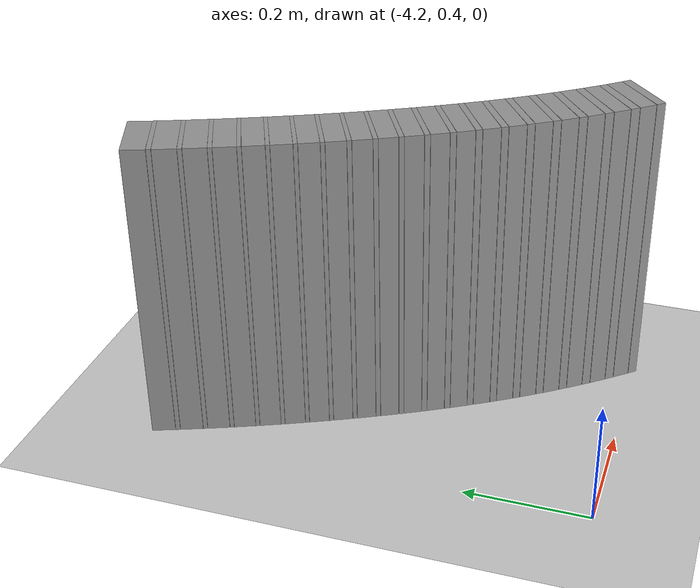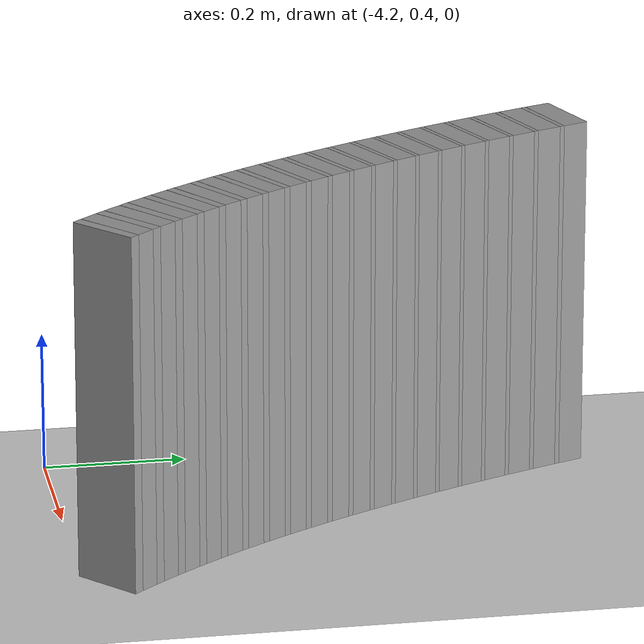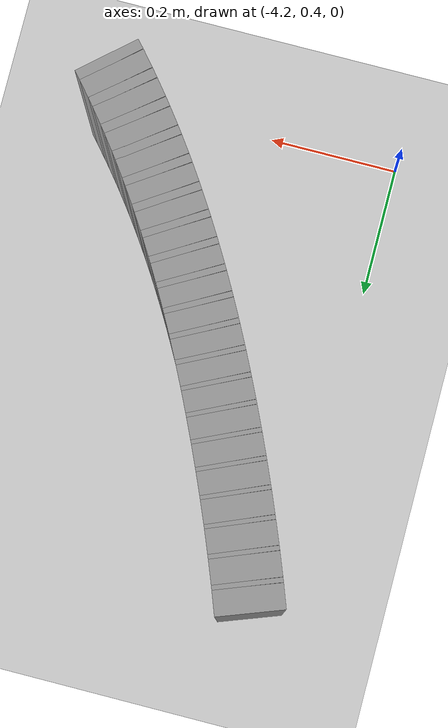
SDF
<sdf version="1.6">
 <world name="default">
  <include><uri>model://ground_plane</uri></include>
  <include><uri>model://sun</uri></include>
  <model name="wall_655_inward">
   <static>true</static>
   <link name="link">
    <collision name="collision">
     <geometry><box><size>0.037300464583130195 0.1 0.5</size></box></geometry>
    </collision>
    <visual name="visual">
     <geometry><box><size>0.037300464583130195 0.1 0.5</size></box></geometry>
     <material>
      <script><uri>file://media/materials/scripts/gazebo.material</uri><name>Gazebo/Gray</name></script>
     </material>
    </visual>
   </link>
   <pose>-4.1477777449177795 1.1191323334147976 0.25 0 0 -1.2159176346132847</pose>
  </model>
  <model name="wall_656_inward">
   <static>true</static>
   <link name="link">
    <collision name="collision">
     <geometry><box><size>0.007293192451600948 0.1 0.5</size></box></geometry>
    </collision>
    <visual name="visual">
     <geometry><box><size>0.007293192451600948 0.1 0.5</size></box></geometry>
     <material>
      <script><uri>file://media/materials/scripts/gazebo.material</uri><name>Gazebo/Gray</name></script>
     </material>
    </visual>
   </link>
   <pose>-4.140005213896336 1.0982341826373734 0.25 0 0 -1.208624377505226</pose>
  </model>
  <model name="wall_657_inward">
   <static>true</static>
   <link name="link">
    <collision name="collision">
     <geometry><box><size>0.03643741315569131 0.1 0.5</size></box></geometry>
    </collision>
    <visual name="visual">
     <geometry><box><size>0.03643741315569131 0.1 0.5</size></box></geometry>
     <material>
      <script><uri>file://media/materials/scripts/gazebo.material</uri><name>Gazebo/Gray</name></script>
     </material>
    </visual>
   </link>
   <pose>-4.132134121920912 1.0778348237265163 0.25 0 0 -1.2013311203970898</pose>
  </model>
  <model name="wall_658_inward">
   <static>true</static>
   <link name="link">
    <collision name="collision">
     <geometry><box><size>0.006912254716383923 0.1 0.5</size></box></geometry>
    </collision>
    <visual name="visual">
     <geometry><box><size>0.006912254716383923 0.1 0.5</size></box></geometry>
     <material>
      <script><uri>file://media/materials/scripts/gazebo.material</uri><name>Gazebo/Gray</name></script>
     </material>
    </visual>
   </link>
   <pose>-4.124284727976988 1.0576312984807923 0.25 0 0 -1.1944188106356992</pose>
  </model>
  <model name="wall_659_inward">
   <static>true</static>
   <link name="link">
    <collision name="collision">
     <geometry><box><size>0.0355606212988983 0.1 0.5</size></box></geometry>
    </collision>
    <visual name="visual">
     <geometry><box><size>0.0355606212988983 0.1 0.5</size></box></geometry>
     <material>
      <script><uri>file://media/materials/scripts/gazebo.material</uri><name>Gazebo/Gray</name></script>
     </material>
    </visual>
   </link>
   <pose>-4.116365047831776 1.0379269327328078 0.25 0 0 -1.187506500874483</pose>
  </model>
  <model name="wall_660_inward">
   <static>true</static>
   <link name="link">
    <collision name="collision">
     <geometry><box><size>0.00661236097015432 0.1 0.5</size></box></geometry>
    </collision>
    <visual name="visual">
     <geometry><box><size>0.00661236097015432 0.1 0.5</size></box></geometry>
     <material>
      <script><uri>file://media/materials/scripts/gazebo.material</uri><name>Gazebo/Gray</name></script>
     </material>
    </visual>
   </link>
   <pose>-4.10845900846369 1.0183787338496089 0.25 0 0 -1.1808940917177069</pose>
  </model>
  <model name="wall_661_inward">
   <static>true</static>
   <link name="link">
    <collision name="collision">
     <geometry><box><size>0.03468120796233376 0.1 0.5</size></box></geometry>
    </collision>
    <visual name="visual">
     <geometry><box><size>0.03468120796233376 0.1 0.5</size></box></geometry>
     <material>
      <script><uri>file://media/materials/scripts/gazebo.material</uri><name>Gazebo/Gray</name></script>
     </material>
    </visual>
   </link>
   <pose>-4.100505294798078 0.9993255020768943 0.25 0 0 -1.1742816825608136</pose>
  </model>
  <model name="wall_662_inward">
   <static>true</static>
   <link name="link">
    <collision name="collision">
     <geometry><box><size>0.00642705891398938 0.1 0.5</size></box></geometry>
    </collision>
    <visual name="visual">
     <geometry><box><size>0.00642705891398938 0.1 0.5</size></box></geometry>
     <material>
      <script><uri>file://media/materials/scripts/gazebo.material</uri><name>Gazebo/Gray</name></script>
     </material>
    </visual>
   </link>
   <pose>-4.092548144650905 0.9803741469515511 0.25 0 0 -1.1678545793987132</pose>
  </model>
  <model name="wall_663_inward">
   <static>true</static>
   <link name="link">
    <collision name="collision">
     <geometry><box><size>0.03381122898415927 0.1 0.5</size></box></geometry>
    </collision>
    <visual name="visual">
     <geometry><box><size>0.03381122898415927 0.1 0.5</size></box></geometry>
     <material>
      <script><uri>file://media/materials/scripts/gazebo.material</uri><name>Gazebo/Gray</name></script>
     </material>
    </visual>
   </link>
   <pose>-4.084559086974141 0.9619092433075982 0.25 0 0 -1.1614274762368435</pose>
  </model>
  <model name="wall_664_inward">
   <static>true</static>
   <link name="link">
    <collision name="collision">
     <geometry><box><size>0.006362974956692393 0.1 0.5</size></box></geometry>
    </collision>
    <visual name="visual">
     <geometry><box><size>0.006362974956692393 0.1 0.5</size></box></geometry>
     <material>
      <script><uri>file://media/materials/scripts/gazebo.material</uri><name>Gazebo/Gray</name></script>
     </material>
    </visual>
   </link>
   <pose>-4.076545264178943 0.9434900106379713 0.25 0 0 -1.1550644583425171</pose>
  </model>
  <model name="wall_665_inward">
   <static>true</static>
   <link name="link">
    <collision name="collision">
     <geometry><box><size>0.03296511525022726 0.1 0.5</size></box></geometry>
    </collision>
    <visual name="visual">
     <geometry><box><size>0.03296511525022726 0.1 0.5</size></box></geometry>
     <material>
      <script><uri>file://media/materials/scripts/gazebo.material</uri><name>Gazebo/Gray</name></script>
     </material>
    </visual>
   </link>
   <pose>-4.068507941503441 0.9255435906357589 0.25 0 0 -1.1487014404483504</pose>
  </model>
  <model name="wall_666_inward">
   <static>true</static>
   <link name="link">
    <collision name="collision">
     <geometry><box><size>0.006426131891679253 0.1 0.5</size></box></geometry>
    </collision>
    <visual name="visual">
     <geometry><box><size>0.006426131891679253 0.1 0.5</size></box></geometry>
     <material>
      <script><uri>file://media/materials/scripts/gazebo.material</uri><name>Gazebo/Gray</name></script>
     </material>
    </visual>
   </link>
   <pose>-4.060420380403878 0.9075851175293531 0.25 0 0 -1.1422752643278566</pose>
  </model>
  <model name="wall_667_inward">
   <static>true</static>
   <link name="link">
    <collision name="collision">
     <geometry><box><size>0.032156178354778436 0.1 0.5</size></box></geometry>
    </collision>
    <visual name="visual">
     <geometry><box><size>0.032156178354778436 0.1 0.5</size></box></geometry>
     <material>
      <script><uri>file://media/materials/scripts/gazebo.material</uri><name>Gazebo/Gray</name></script>
     </material>
    </visual>
   </link>
   <pose>-4.052310563120322 0.8900814780139016 0.25 0 0 -1.1358490882072512</pose>
  </model>
  <model name="wall_668_inward">
   <static>true</static>
   <link name="link">
    <collision name="collision">
     <geometry><box><size>0.00662562842160259 0.1 0.5</size></box></geometry>
    </collision>
    <visual name="visual">
     <geometry><box><size>0.00662562842160259 0.1 0.5</size></box></geometry>
     <material>
      <script><uri>file://media/materials/scripts/gazebo.material</uri><name>Gazebo/Gray</name></script>
     </material>
    </visual>
   </link>
   <pose>-4.0441200873923 0.8725053321533448 0.25 0 0 -1.129223411308407</pose>
  </model>
  <model name="wall_669_inward">
   <static>true</static>
   <link name="link">
    <collision name="collision">
     <geometry><box><size>0.03139613469563077 0.1 0.5</size></box></geometry>
    </collision>
    <visual name="visual">
     <geometry><box><size>0.03139613469563077 0.1 0.5</size></box></geometry>
     <material>
      <script><uri>file://media/materials/scripts/gazebo.material</uri><name>Gazebo/Gray</name></script>
     </material>
    </visual>
   </link>
   <pose>-4.035901672584313 0.8553627246300072 0.25 0 0 -1.1225977344094153</pose>
  </model>
  <model name="wall_670_inward">
   <static>true</static>
   <link name="link">
    <collision name="collision">
     <geometry><box><size>0.0069474247398406365 0.1 0.5</size></box></geometry>
    </collision>
    <visual name="visual">
     <geometry><box><size>0.0069474247398406365 0.1 0.5</size></box></geometry>
     <material>
      <script><uri>file://media/materials/scripts/gazebo.material</uri><name>Gazebo/Gray</name></script>
     </material>
    </visual>
   </link>
   <pose>-4.027572007349639 0.8380950906698893 0.25 0 0 -1.1156502537801256</pose>
  </model>
  <model name="wall_671_inward">
   <static>true</static>
   <link name="link">
    <collision name="collision">
     <geometry><box><size>0.0306989106808327 0.1 0.5</size></box></geometry>
    </collision>
    <visual name="visual">
     <geometry><box><size>0.0306989106808327 0.1 0.5</size></box></geometry>
     <material>
      <script><uri>file://media/materials/scripts/gazebo.material</uri><name>Gazebo/Gray</name></script>
     </material>
    </visual>
   </link>
   <pose>-4.019201844647197 0.8212353918174871 0.25 0 0 -1.108702773150873</pose>
  </model>
  <model name="wall_672_inward">
   <static>true</static>
   <link name="link">
    <collision name="collision">
     <geometry><box><size>0.007388957110436156 0.1 0.5</size></box></geometry>
    </collision>
    <visual name="visual">
     <geometry><box><size>0.007388957110436156 0.1 0.5</size></box></geometry>
     <material>
      <script><uri>file://media/materials/scripts/gazebo.material</uri><name>Gazebo/Gray</name></script>
     </material>
    </visual>
   </link>
   <pose>-4.01068722927632 0.8042010251669958 0.25 0 0 -1.1013137488033562</pose>
  </model>
  <model name="wall_673_inward">
   <static>true</static>
   <link name="link">
    <collision name="collision">
     <geometry><box><size>0.030075622267343057 0.1 0.5</size></box></geometry>
    </collision>
    <visual name="visual">
     <geometry><box><size>0.030075622267343057 0.1 0.5</size></box></geometry>
     <material>
      <script><uri>file://media/materials/scripts/gazebo.material</uri><name>Gazebo/Gray</name></script>
     </material>
    </visual>
   </link>
   <pose>-4.0021133690560085 0.7875461590718105 0.25 0 0 -1.0939247244558366</pose>
  </model>
  <model name="wall_674_inward">
   <static>true</static>
   <link name="link">
    <collision name="collision">
     <geometry><box><size>0.007952051819569874 0.1 0.5</size></box></geometry>
    </collision>
    <visual name="visual">
     <geometry><box><size>0.007952051819569874 0.1 0.5</size></box></geometry>
     <material>
      <script><uri>file://media/materials/scripts/gazebo.material</uri><name>Gazebo/Gray</name></script>
     </material>
    </visual>
   </link>
   <pose>-3.9933579464674063 0.7706682210023641 0.25 0 0 -1.0859725888257379</pose>
  </model>
  <model name="wall_675_inward">
   <static>true</static>
   <link name="link">
    <collision name="collision">
     <geometry><box><size>0.029534103511804334 0.1 0.5</size></box></geometry>
    </collision>
    <visual name="visual">
     <geometry><box><size>0.029534103511804334 0.1 0.5</size></box></geometry>
     <material>
      <script><uri>file://media/materials/scripts/gazebo.material</uri><name>Gazebo/Gray</name></script>
     </material>
    </visual>
   </link>
   <pose>-3.984519011833304 0.7541402906401372 0.25 0 0 -1.0780204531955884</pose>
  </model>
  <model name="wall_676_inward">
   <static>true</static>
   <link name="link">
    <collision name="collision">
     <geometry><box><size>0.008596051838584666 0.1 0.5</size></box></geometry>
    </collision>
    <visual name="visual">
     <geometry><box><size>0.008596051838584666 0.1 0.5</size></box></geometry>
     <material>
      <script><uri>file://media/materials/scripts/gazebo.material</uri><name>Gazebo/Gray</name></script>
     </material>
    </visual>
   </link>
   <pose>-3.9754673571094568 0.7373611356088488 0.25 0 0 -1.0694242954900643</pose>
  </model>
  <model name="wall_677_inward">
   <static>true</static>
   <link name="link">
    <collision name="collision">
     <geometry><box><size>0.029082183010291262 0.1 0.5</size></box></geometry>
    </collision>
    <visual name="visual">
     <geometry><box><size>0.029082183010291262 0.1 0.5</size></box></geometry>
     <material>
      <script><uri>file://media/materials/scripts/gazebo.material</uri><name>Gazebo/Gray</name></script>
     </material>
    </visual>
   </link>
   <pose>-3.96630337422032 0.7209012101914594 0.25 0 0 -1.060828137784584</pose>
  </model>
  <model name="wall_678_inward">
   <static>true</static>
   <link name="link">
    <collision name="collision">
     <geometry><box><size>0.009345192958163556 0.1 0.5</size></box></geometry>
    </collision>
    <visual name="visual">
     <geometry><box><size>0.009345192958163556 0.1 0.5</size></box></geometry>
     <material>
      <script><uri>file://media/materials/scripts/gazebo.material</uri><name>Gazebo/Gray</name></script>
     </material>
    </visual>
   </link>
   <pose>-3.9568862117360037 0.7041537649300369 0.25 0 0 -1.0514828087977006</pose>
  </model>
  <model name="wall_679_inward">
   <static>true</static>
   <link name="link">
    <collision name="collision">
     <geometry><box><size>0.028723440009916702 0.1 0.5</size></box></geometry>
    </collision>
    <visual name="visual">
     <geometry><box><size>0.028723440009916702 0.1 0.5</size></box></geometry>
     <material>
      <script><uri>file://media/materials/scripts/gazebo.material</uri><name>Gazebo/Gray</name></script>
     </material>
    </visual>
   </link>
   <pose>-3.947323572543226 0.687696083593767 0.25 0 0 -1.0421374798108007</pose>
  </model>
  <model name="wall_680_inward">
   <static>true</static>
   <link name="link">
    <collision name="collision">
     <geometry><box><size>0.01015620518059686 0.1 0.5</size></box></geometry>
    </collision>
    <visual name="visual">
     <geometry><box><size>0.01015620518059686 0.1 0.5</size></box></geometry>
     <material>
      <script><uri>file://media/materials/scripts/gazebo.material</uri><name>Gazebo/Gray</name></script>
     </material>
    </visual>
   </link>
   <pose>-3.937474196361803 0.6709363410978978 0.25 0 0 -1.0319811000225383</pose>
  </model>
  <model name="wall_681_inward">
   <static>true</static>
   <link name="link">
    <collision name="collision">
     <geometry><box><size>0.028460268694327565 0.1 0.5</size></box></geometry>
    </collision>
    <visual name="visual">
     <geometry><box><size>0.028460268694327565 0.1 0.5</size></box></geometry>
     <material>
      <script><uri>file://media/materials/scripts/gazebo.material</uri><name>Gazebo/Gray</name></script>
     </material>
    </visual>
   </link>
   <pose>-3.9274430936368194 0.6544385370671748 0.25 0 0 -1.021824720234275</pose>
  </model>
  <model name="wall_682_inward">
   <static>true</static>
   <link name="link">
    <collision name="collision">
     <geometry><box><size>0.011008726579064387 0.1 0.5</size></box></geometry>
    </collision>
    <visual name="visual">
     <geometry><box><size>0.011008726579064387 0.1 0.5</size></box></geometry>
     <material>
      <script><uri>file://media/materials/scripts/gazebo.material</uri><name>Gazebo/Gray</name></script>
     </material>
    </visual>
   </link>
   <pose>-3.917093912947233 0.6376356991215065 0.25 0 0 -1.0108157712813979</pose>
  </model>
  <model name="wall_683_inward">
   <static>true</static>
   <link name="link">
    <collision name="collision">
     <geometry><box><size>0.02829365327712948 0.1 0.5</size></box></geometry>
    </collision>
    <visual name="visual">
     <geometry><box><size>0.02829365327712948 0.1 0.5</size></box></geometry>
     <material>
      <script><uri>file://media/materials/scripts/gazebo.material</uri><name>Gazebo/Gray</name></script>
     </material>
    </visual>
   </link>
   <pose>-3.906524299295603 0.621069374984216 0.25 0 0 -0.9998068223284678</pose>
  </model>
  <model name="wall_684_inward">
   <static>true</static>
   <link name="link">
    <collision name="collision">
     <geometry><box><size>0.011904463225547666 0.1 0.5</size></box></geometry>
    </collision>
    <visual name="visual">
     <geometry><box><size>0.011904463225547666 0.1 0.5</size></box></geometry>
     <material>
      <script><uri>file://media/materials/scripts/gazebo.material</uri><name>Gazebo/Gray</name></script>
     </material>
    </visual>
   </link>
   <pose>-3.8956020751084686 0.6041973499803603 0.25 0 0 -0.9879020779090274</pose>
  </model>
  <model name="wall_685_inward">
   <static>true</static>
   <link name="link">
    <collision name="collision">
     <geometry><box><size>0.02822162398803851 0.1 0.5</size></box></geometry>
    </collision>
    <visual name="visual">
     <geometry><box><size>0.02822162398803851 0.1 0.5</size></box></geometry>
     <material>
      <script><uri>file://media/materials/scripts/gazebo.material</uri><name>Gazebo/Gray</name></script>
     </material>
    </visual>
   </link>
   <pose>-3.8844188288847468 0.5875405549890608 0.25 0 0 -0.9759973334895551</pose>
  </model>
  <model name="wall_686_inward">
   <static>true</static>
   <link name="link">
    <collision name="collision">
     <geometry><box><size>0.01279972822663946 0.1 0.5</size></box></geometry>
    </collision>
    <visual name="visual">
     <geometry><box><size>0.01279972822663946 0.1 0.5</size></box></geometry>
     <material>
      <script><uri>file://media/materials/scripts/gazebo.material</uri><name>Gazebo/Gray</name></script>
     </material>
    </visual>
   </link>
   <pose>-3.8728582753768874 0.5705986943754888 0.25 0 0 -0.9631972557341004</pose>
  </model>
  <model name="wall_687_inward">
   <static>true</static>
   <link name="link">
    <collision name="collision">
     <geometry><box><size>0.028240503773260216 0.1 0.5</size></box></geometry>
    </collision>
    <visual name="visual">
     <geometry><box><size>0.028240503773260216 0.1 0.5</size></box></geometry>
     <material>
      <script><uri>file://media/materials/scripts/gazebo.material</uri><name>Gazebo/Gray</name></script>
     </material>
    </visual>
   </link>
   <pose>-3.8609956571776882 0.5538553779689095 0.25 0 0 -0.9503971779786116</pose>
  </model>
  <model name="wall_688_inward">
   <static>true</static>
   <link name="link">
    <collision name="collision">
     <geometry><box><size>0.013667424159356718 0.1 0.5</size></box></geometry>
    </collision>
    <visual name="visual">
     <geometry><box><size>0.013667424159356718 0.1 0.5</size></box></geometry>
     <material>
      <script><uri>file://media/materials/scripts/gazebo.material</uri><name>Gazebo/Gray</name></script>
     </material>
    </visual>
   </link>
   <pose>-3.848738238369567 0.5368610770318794 0.25 0 0 -0.936729328274459</pose>
  </model>
  <model name="wall_689_inward">
   <static>true</static>
   <link name="link">
    <collision name="collision">
     <geometry><box><size>0.028346782441233294 0.1 0.5</size></box></geometry>
    </collision>
    <visual name="visual">
     <geometry><box><size>0.028346782441233294 0.1 0.5</size></box></geometry>
     <material>
      <script><uri>file://media/materials/scripts/gazebo.material</uri><name>Gazebo/Gray</name></script>
     </material>
    </visual>
   </link>
   <pose>-3.836137805285315 0.5200530616345684 0.25 0 0 -0.923061478570318</pose>
  </model>
  <model name="wall_690_inward">
   <static>true</static>
   <link name="link">
    <collision name="collision">
     <geometry><box><size>0.014477978983074376 0.1 0.5</size></box></geometry>
    </collision>
    <visual name="visual">
     <geometry><box><size>0.014477978983074376 0.1 0.5</size></box></geometry>
     <material>
      <script><uri>file://media/materials/scripts/gazebo.material</uri><name>Gazebo/Gray</name></script>
     </material>
    </visual>
   </link>
   <pose>-3.8231348487003762 0.5030415461144577 0.25 0 0 -0.9085829937467984</pose>
  </model>
  <model name="wall_691_inward">
   <static>true</static>
   <link name="link">
    <collision name="collision">
     <geometry><box><size>0.028534885859993322 0.1 0.5</size></box></geometry>
    </collision>
    <visual name="visual">
     <geometry><box><size>0.028534885859993322 0.1 0.5</size></box></geometry>
     <material>
      <script><uri>file://media/materials/scripts/gazebo.material</uri><name>Gazebo/Gray</name></script>
     </material>
    </visual>
   </link>
   <pose>-3.8097493369721884 0.48620904597230413 0.25 0 0 -0.894104508923297</pose>
  </model>
  <model name="wall_692_inward">
   <static>true</static>
   <link name="link">
    <collision name="collision">
     <geometry><box><size>0.015171703276373691 0.1 0.5</size></box></geometry>
    </collision>
    <visual name="visual">
     <geometry><box><size>0.015171703276373691 0.1 0.5</size></box></geometry>
     <material>
      <script><uri>file://media/materials/scripts/gazebo.material</uri><name>Gazebo/Gray</name></script>
     </material>
    </visual>
   </link>
   <pose>-3.7959752440245835 0.4692439072191369 0.25 0 0 -0.878932223548052</pose>
  </model>
  <model name="wall_693_inward">
   <static>true</static>
   <link name="link">
    <collision name="collision">
     <geometry><box><size>0.028799446461216044 0.1 0.5</size></box></geometry>
    </collision>
    <visual name="visual">
     <geometry><box><size>0.028799446461216044 0.1 0.5</size></box></geometry>
     <material>
      <script><uri>file://media/materials/scripts/gazebo.material</uri><name>Gazebo/Gray</name></script>
     </material>
    </visual>
   </link>
   <pose>-3.7817818482594268 0.45245439043232344 0.25 0 0 -0.8637599381728016</pose>
  </model>
  <model name="wall_694_inward">
   <static>true</static>
   <link name="link">
    <collision name="collision">
     <geometry><box><size>0.01572385071593479 0.1 0.5</size></box></geometry>
    </collision>
    <visual name="visual">
     <geometry><box><size>0.01572385071593479 0.1 0.5</size></box></geometry>
     <material>
      <script><uri>file://media/materials/scripts/gazebo.material</uri><name>Gazebo/Gray</name></script>
     </material>
    </visual>
   </link>
   <pose>-3.7672276948613774 0.43561011469405625 0.25 0 0 -0.8480354394586485</pose>
  </model>
 </world>
</sdf>
